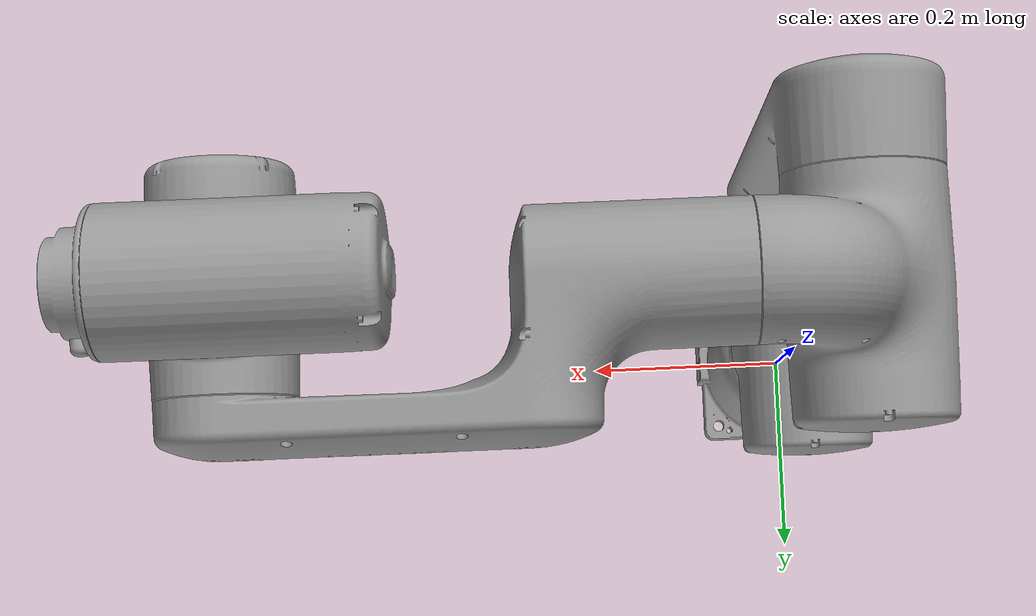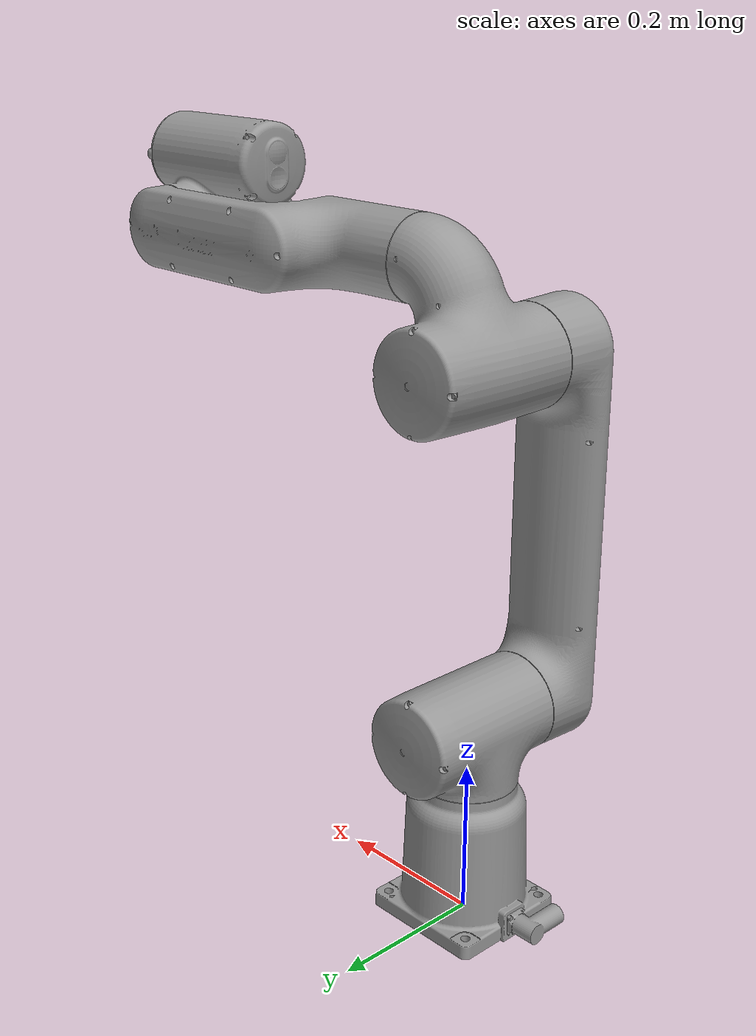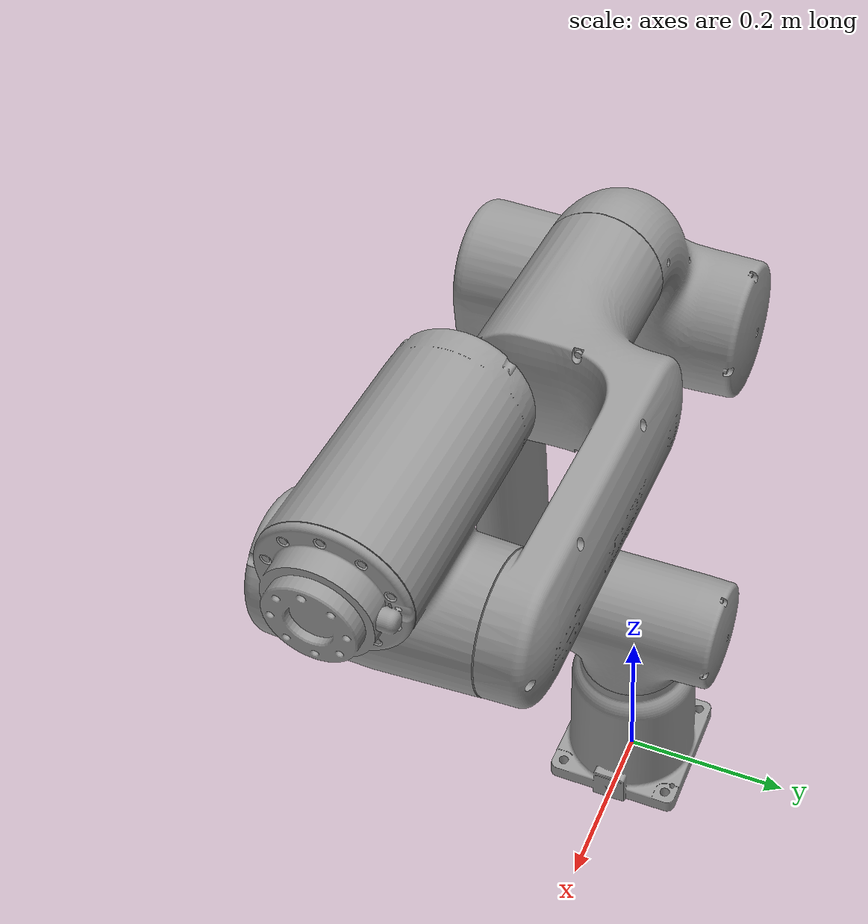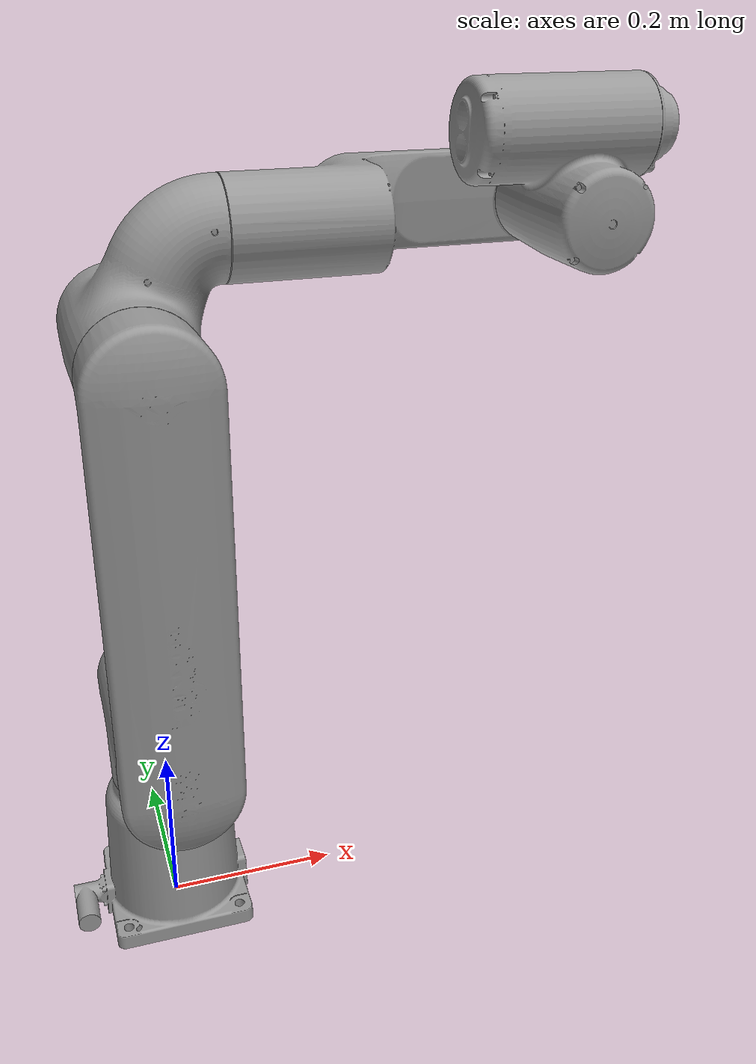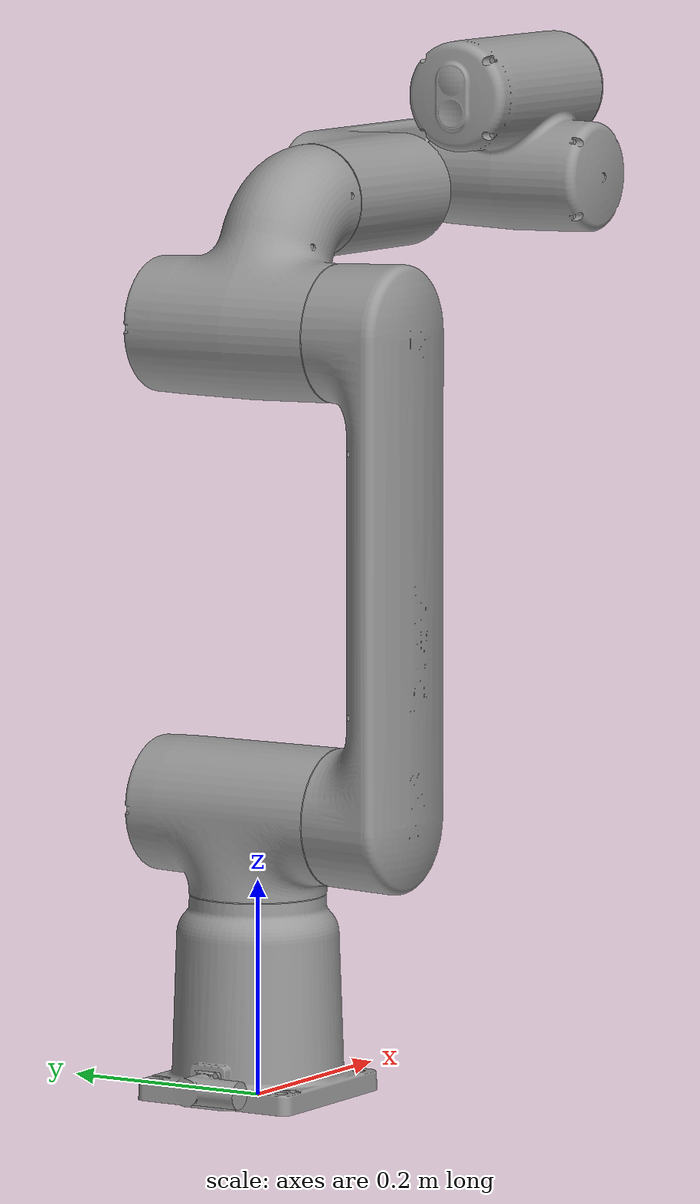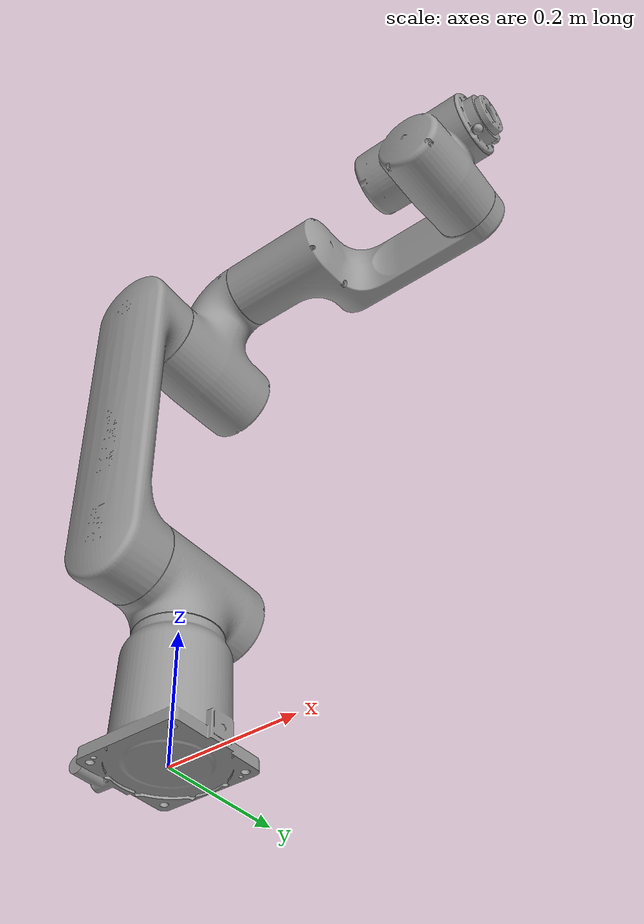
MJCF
<mujoco model="gofa_arm">
    <compiler angle="radian" meshdir="assets" autolimits="true"/>
    <asset>
        <mesh name="base_link" file="../robot/models/gofa_model/assets/base_link.STL"/>
        <mesh name="link_1" file="../robot/models/gofa_model/assets/link_1.STL" />
        <mesh name="link_2" file="../robot/models/gofa_model/assets/link_2.STL" />
        <mesh name="link_3" file="../robot/models/gofa_model/assets/link_3.STL" />
        <mesh name="link_4" file="../robot/models/gofa_model/assets/link_4.STL" />
        <mesh name="link_5" file="../robot/models/gofa_model/assets/link_5.STL" />
        <mesh name="link_6" file="../robot/models/gofa_model/assets/link_6.STL" />
    </asset>
    <worldbody>
        <geom type="mesh" rgba="0.6 0.6 0.6 1" mesh="base_link" />
        <body name="link_1" pos="0 0 0.1679">
            <inertial pos="0 -0.02161 0.09328" quat="0.674445 0.738316 0.00271381 -0.00245913" mass="4.93" diaginertia="0.0172761 0.0158887 0.00965726" />
            <joint name="joint_1" pos="0 0 0" axis="0 0 1" limited="true" range="-3.14159 3.14159" damping="50000" stiffness="500000" />
            <geom type="mesh" rgba="0.6 0.6 0.6 1" mesh="link_1" />
            <body name="link_2" pos="0 -0.0609 0.0971">
                <inertial pos="0 -0.06794 0.2203" quat="0.707114 -0.00010546 -5.60132e-05 0.707099" mass="3.36" diaginertia="0.10729 0.1041 0.00718999" />
                <joint name="joint_2" pos="0 0 0" axis="0 1 0" limited="true" range="-3.14159 3.14159" damping="50000" stiffness="500000" />
                <geom type="mesh" rgba="0.6 0.6 0.6 1" mesh="link_2" />
                <body name="link_3" pos="0 0 0.444">
                    <inertial pos="0.00581 0.04011 0.00507" quat="0.97157 0.180027 -0.100011 0.116787" mass="5.18" diaginertia="0.0316407 0.0251237 0.0154205" />
                    <joint name="joint_3" pos="0 0 0" axis="0 1 0" limited="true" range="-3.92699 1.48353" damping="50000" stiffness="500000" />
                    <geom type="mesh" rgba="0.6 0.6 0.6 1" mesh="link_3" />
                    <body name="link_4" pos="0.113 0.0609 0.11">
                        <inertial pos="0.09499 0.02668 -0.00157" quat="0.195396 0.716032 -0.00835779 0.670111" mass="3.79" diaginertia="0.0564317 0.0559657 0.00734569" />
                        <joint name="joint_4" pos="0 0 0" axis="1 0 0" limited="true" range="-3.14159 3.14159" damping="50000" stiffness="500000"/>
                        <geom type="mesh" rgba="0.6 0.6 0.6 1" mesh="link_4" />
                        <body name="link_5" pos="0.357 0.0565 0">
                            <inertial pos="-0.0084 -0.04567 0.0329" quat="0.821583 -0.00122227 0.292485 0.489338" mass="4.26" diaginertia="0.0187008 0.0163414 0.0137768" />
                            <joint name="joint_5" pos="0 0 0" axis="0 1 0" limited="true" range="-3.14159 3.14159" damping="50000" stiffness="500000" />
                            <geom type="mesh" rgba="0.6 0.6 0.6 1" mesh="link_5" />
                            <body name="link_6" pos="0.101 -0.0565 0.08">
                                <inertial pos="-0.05129 -2e-05 4e-05" quat="0.408245 0.912857 -0.00452271 0.00269951" mass="1.04" diaginertia="0.00124393 0.00101085 0.00101003" />
                                <joint name="joint_6" pos="0 0 0" axis="1 0 0" limited="true" range="-4.71239 4.71239" damping="50000" stiffness="500000" />
                                <geom type="mesh" rgba="0.6 0.6 0.6 1" mesh="link_6" />
                            </body>
                        </body>
                    </body>
                </body>
            </body>
        </body>
    </worldbody>
</mujoco>
